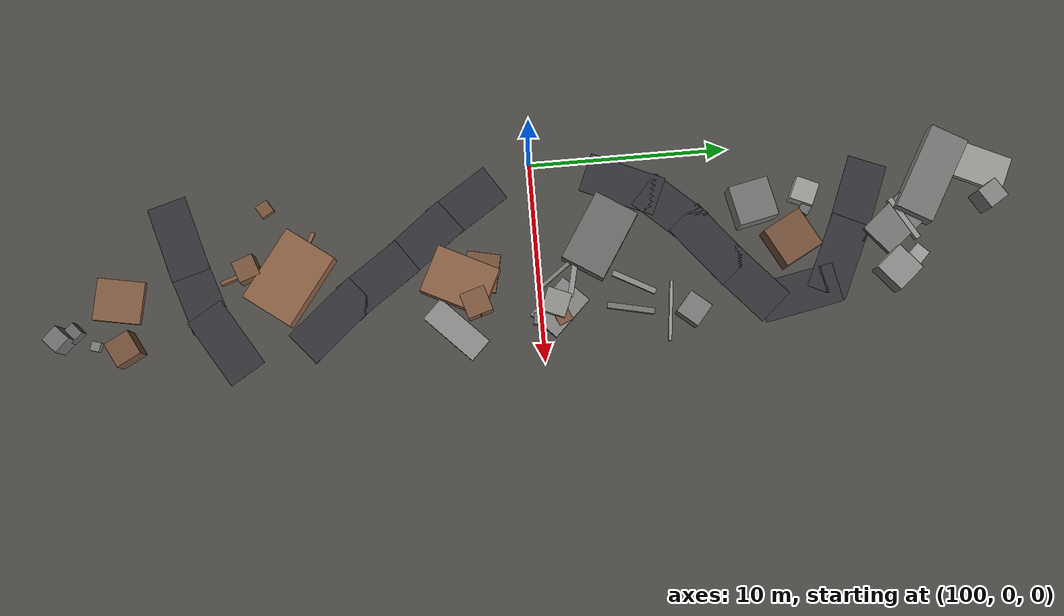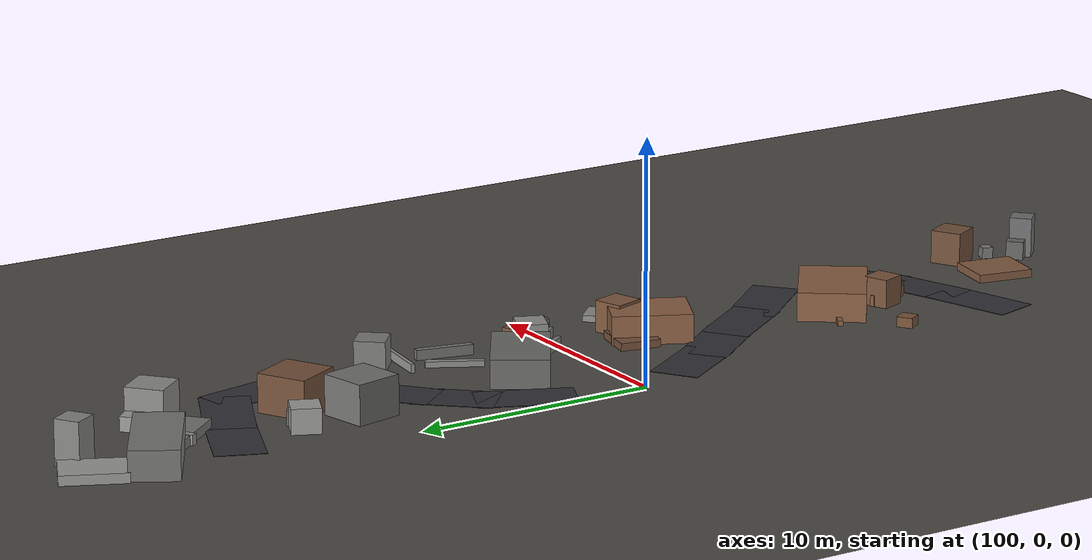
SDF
<sdf version="1.6">
 <world name="navitas_arena">
  <model name="ground_plane">
   <static>true</static>
   <link name="link">
    <collision name="collision">
     <geometry><plane><normal>0 0 1</normal><size>400 400</size></plane></geometry>
     <surface><friction><ode><mu>0.800</mu><mu2>0.800</mu2></ode></friction></surface>
    </collision>
    <visual name="visual">
     <cast_shadows>false</cast_shadows>
     <geometry><plane><normal>0 0 1</normal><size>400 400</size></plane></geometry>
     <material><ambient>0.300 0.290 0.270 1</ambient><diffuse>0.300 0.290 0.270 1</diffuse></material>
    </visual>
   </link>
  </model>
  <model name="road_zor_3_4">
   <static>true</static>
   <pose>102.347 -17.886 0.040 0 0 0.279</pose>
   <link name="link">
    <collision name="col"><geometry><box><size>3.922 2.000 0.020</size></box></geometry></collision>
    <visual name="vis">
     <geometry><box><size>3.922 2.000 0.020</size></box></geometry>
     <material><ambient>0.20 0.20 0.22 1</ambient><diffuse>0.20 0.20 0.22 1</diffuse></material>
    </visual>
   </link>
  </model>
  <model name="road_zor_3_5">
   <static>true</static>
   <pose>105.141 -17.017 0.040 0 0 0.325</pose>
   <link name="link">
    <collision name="col"><geometry><box><size>3.731 2.000 0.020</size></box></geometry></collision>
    <visual name="vis">
     <geometry><box><size>3.731 2.000 0.020</size></box></geometry>
     <material><ambient>0.20 0.20 0.22 1</ambient><diffuse>0.20 0.20 0.22 1</diffuse></material>
    </visual>
   </link>
  </model>
  <model name="road_zor_3_6">
   <static>true</static>
   <pose>107.753 -15.783 0.040 0 0 0.552</pose>
   <link name="link">
    <collision name="col"><geometry><box><size>3.884 2.000 0.020</size></box></geometry></collision>
    <visual name="vis">
     <geometry><box><size>3.884 2.000 0.020</size></box></geometry>
     <material><ambient>0.20 0.20 0.22 1</ambient><diffuse>0.20 0.20 0.22 1</diffuse></material>
    </visual>
   </link>
  </model>
  <model name="road_zor_3_8">
   <static>true</static>
   <pose>107.057 -10.426 0.040 0 0 2.277</pose>
   <link name="link">
    <collision name="col"><geometry><box><size>4.134 2.000 0.020</size></box></geometry></collision>
    <visual name="vis">
     <geometry><box><size>4.134 2.000 0.020</size></box></geometry>
     <material><ambient>0.20 0.20 0.22 1</ambient><diffuse>0.20 0.20 0.22 1</diffuse></material>
    </visual>
   </link>
  </model>
  <model name="road_zor_3_9">
   <static>true</static>
   <pose>105.177 -8.014 0.040 0 0 2.184</pose>
   <link name="link">
    <collision name="col"><geometry><box><size>3.788 2.000 0.020</size></box></geometry></collision>
    <visual name="vis">
     <geometry><box><size>3.788 2.000 0.020</size></box></geometry>
     <material><ambient>0.20 0.20 0.22 1</ambient><diffuse>0.20 0.20 0.22 1</diffuse></material>
    </visual>
   </link>
  </model>
  <model name="road_zor_3_10">
   <static>true</static>
   <pose>103.433 -5.667 0.040 0 0 2.235</pose>
   <link name="link">
    <collision name="col"><geometry><box><size>3.863 2.000 0.020</size></box></geometry></collision>
    <visual name="vis">
     <geometry><box><size>3.863 2.000 0.020</size></box></geometry>
     <material><ambient>0.20 0.20 0.22 1</ambient><diffuse>0.20 0.20 0.22 1</diffuse></material>
    </visual>
   </link>
  </model>
  <model name="road_zor_3_11">
   <static>true</static>
   <pose>101.753 -3.333 0.040 0 0 2.152</pose>
   <link name="link">
    <collision name="col"><geometry><box><size>3.692 2.000 0.020</size></box></geometry></collision>
    <visual name="vis">
     <geometry><box><size>3.692 2.000 0.020</size></box></geometry>
     <material><ambient>0.20 0.20 0.22 1</ambient><diffuse>0.20 0.20 0.22 1</diffuse></material>
    </visual>
   </link>
  </model>
  <model name="road_zor_3_14">
   <static>true</static>
   <pose>101.357 4.600 0.040 0 0 1.158</pose>
   <link name="link">
    <collision name="col"><geometry><box><size>3.957 2.000 0.020</size></box></geometry></collision>
    <visual name="vis">
     <geometry><box><size>3.957 2.000 0.020</size></box></geometry>
     <material><ambient>0.20 0.20 0.22 1</ambient><diffuse>0.20 0.20 0.22 1</diffuse></material>
    </visual>
   </link>
  </model>
  <model name="road_zor_3_15">
   <static>true</static>
   <pose>102.790 6.904 0.040 0 0 0.835</pose>
   <link name="link">
    <collision name="col"><geometry><box><size>3.340 2.000 0.020</size></box></geometry></collision>
    <visual name="vis">
     <geometry><box><size>3.340 2.000 0.020</size></box></geometry>
     <material><ambient>0.20 0.20 0.22 1</ambient><diffuse>0.20 0.20 0.22 1</diffuse></material>
    </visual>
   </link>
  </model>
  <model name="road_zor_3_16">
   <static>true</static>
   <pose>104.746 8.732 0.040 0 0 0.682</pose>
   <link name="link">
    <collision name="col"><geometry><box><size>3.831 2.000 0.020</size></box></geometry></collision>
    <visual name="vis">
     <geometry><box><size>3.831 2.000 0.020</size></box></geometry>
     <material><ambient>0.20 0.20 0.22 1</ambient><diffuse>0.20 0.20 0.22 1</diffuse></material>
    </visual>
   </link>
  </model>
  <model name="road_zor_3_17">
   <static>true</static>
   <pose>106.874 10.541 0.040 0 0 0.730</pose>
   <link name="link">
    <collision name="col"><geometry><box><size>3.555 2.000 0.020</size></box></geometry></collision>
    <visual name="vis">
     <geometry><box><size>3.555 2.000 0.020</size></box></geometry>
     <material><ambient>0.20 0.20 0.22 1</ambient><diffuse>0.20 0.20 0.22 1</diffuse></material>
    </visual>
   </link>
  </model>
  <model name="road_zor_3_18">
   <static>true</static>
   <pose>107.564 12.961 0.040 0 0 1.763</pose>
   <link name="link">
    <collision name="col"><geometry><box><size>4.029 2.000 0.020</size></box></geometry></collision>
    <visual name="vis">
     <geometry><box><size>4.029 2.000 0.020</size></box></geometry>
     <material><ambient>0.20 0.20 0.22 1</ambient><diffuse>0.20 0.20 0.22 1</diffuse></material>
    </visual>
   </link>
  </model>
  <model name="road_zor_3_19">
   <static>true</static>
   <pose>105.885 15.135 0.040 0 0 2.709</pose>
   <link name="link">
    <collision name="col"><geometry><box><size>3.941 2.000 0.020</size></box></geometry></collision>
    <visual name="vis">
     <geometry><box><size>3.941 2.000 0.020</size></box></geometry>
     <material><ambient>0.20 0.20 0.22 1</ambient><diffuse>0.20 0.20 0.22 1</diffuse></material>
    </visual>
   </link>
  </model>
  <model name="road_zor_3_20">
   <static>true</static>
   <pose>103.057 16.352 0.040 0 0 2.761</pose>
   <link name="link">
    <collision name="col"><geometry><box><size>4.018 2.000 0.020</size></box></geometry></collision>
    <visual name="vis">
     <geometry><box><size>4.018 2.000 0.020</size></box></geometry>
     <material><ambient>0.20 0.20 0.22 1</ambient><diffuse>0.20 0.20 0.22 1</diffuse></material>
    </visual>
   </link>
  </model>
  <model name="deb_zor_5">
   <static>true</static>
   <pose>107.823 1.070 0.320 0 0 0.381</pose>
   <link name="link">
    <collision name="col"><geometry><box><size>0.736 0.736 0.640</size></box></geometry></collision>
    <visual name="vis">
     <geometry><box><size>0.736 0.736 0.640</size></box></geometry>
     <material><ambient>0.49 0.34 0.24 1</ambient><diffuse>0.49 0.34 0.24 1</diffuse></material>
    </visual>
   </link>
  </model>
  <model name="deb_zor_76">
   <static>true</static>
   <pose>105.547 1.078 0.211 0 0 2.209</pose>
   <link name="link">
    <collision name="col"><geometry><box><size>2.885 0.183 0.423</size></box></geometry></collision>
    <visual name="vis">
     <geometry><box><size>2.885 0.183 0.423</size></box></geometry>
     <material><ambient>0.49 0.49 0.48 1</ambient><diffuse>0.49 0.49 0.48 1</diffuse></material>
    </visual>
   </link>
  </model>
  <model name="deb_zor_90">
   <static>true</static>
   <pose>105.256 -2.815 0.160 0 0 2.933</pose>
   <link name="link">
    <collision name="col"><geometry><box><size>1.926 1.692 0.319</size></box></geometry></collision>
    <visual name="vis">
     <geometry><box><size>1.926 1.692 0.319</size></box></geometry>
     <material><ambient>0.46 0.32 0.23 1</ambient><diffuse>0.46 0.32 0.23 1</diffuse></material>
    </visual>
   </link>
  </model>
  <model name="deb_zor_98">
   <static>true</static>
   <pose>107.683 4.474 0.211 0 0 1.360</pose>
   <link name="link">
    <collision name="col"><geometry><box><size>2.368 0.291 0.422</size></box></geometry></collision>
    <visual name="vis">
     <geometry><box><size>2.368 0.291 0.422</size></box></geometry>
     <material><ambient>0.45 0.45 0.44 1</ambient><diffuse>0.45 0.45 0.44 1</diffuse></material>
    </visual>
   </link>
  </model>
  <model name="deb_zor_104">
   <static>true</static>
   <pose>107.748 -20.600 0.704 0 0 0.482</pose>
   <link name="link">
    <collision name="col"><geometry><box><size>1.321 1.321 1.408</size></box></geometry></collision>
    <visual name="vis">
     <geometry><box><size>1.321 1.321 1.408</size></box></geometry>
     <material><ambient>0.45 0.32 0.23 1</ambient><diffuse>0.45 0.32 0.23 1</diffuse></material>
    </visual>
   </link>
  </model>
  <model name="deb_zor_105">
   <static>true</static>
   <pose>108.035 7.533 0.609 0 0 2.439</pose>
   <link name="link">
    <collision name="col"><geometry><box><size>1.265 1.265 1.219</size></box></geometry></collision>
    <visual name="vis">
     <geometry><box><size>1.265 1.265 1.219</size></box></geometry>
     <material><ambient>0.48 0.48 0.47 1</ambient><diffuse>0.48 0.48 0.47 1</diffuse></material>
    </visual>
   </link>
  </model>
  <model name="deb_zor_108">
   <static>true</static>
   <pose>105.252 -20.951 0.170 0 0 1.390</pose>
   <link name="link">
    <collision name="col"><geometry><box><size>2.407 2.114 0.340</size></box></geometry></collision>
    <visual name="vis">
     <geometry><box><size>2.407 2.114 0.340</size></box></geometry>
     <material><ambient>0.51 0.36 0.26 1</ambient><diffuse>0.51 0.36 0.26 1</diffuse></material>
    </visual>
   </link>
  </model>
  <model name="deb_zor_123">
   <static>true</static>
   <pose>103.577 -11.655 0.109 0 0 2.624</pose>
   <link name="link">
    <collision name="col"><geometry><box><size>2.303 0.211 0.219</size></box></geometry></collision>
    <visual name="vis">
     <geometry><box><size>2.303 0.211 0.219</size></box></geometry>
     <material><ambient>0.53 0.37 0.26 1</ambient><diffuse>0.53 0.37 0.26 1</diffuse></material>
    </visual>
   </link>
  </model>
  <model name="deb_zor_136">
   <static>true</static>
   <pose>107.433 -22.159 0.236 0 0 2.847</pose>
   <link name="link">
    <collision name="col"><geometry><box><size>0.469 0.469 0.473</size></box></geometry></collision>
    <visual name="vis">
     <geometry><box><size>0.469 0.469 0.473</size></box></geometry>
     <material><ambient>0.48 0.48 0.47 1</ambient><diffuse>0.48 0.48 0.47 1</diffuse></material>
    </visual>
   </link>
  </model>
  <model name="deb_zor_142">
   <static>true</static>
   <pose>107.358 0.941 0.209 0 0 2.344</pose>
   <link name="link">
    <collision name="col"><geometry><box><size>2.503 1.731 0.417</size></box></geometry></collision>
    <visual name="vis">
     <geometry><box><size>2.503 1.731 0.417</size></box></geometry>
     <material><ambient>0.51 0.51 0.50 1</ambient><diffuse>0.51 0.51 0.50 1</diffuse></material>
    </visual>
   </link>
  </model>
  <model name="deb_zor_156">
   <static>true</static>
   <pose>104.295 18.533 0.208 0 0 0.525</pose>
   <link name="link">
    <collision name="col"><geometry><box><size>2.417 0.278 0.416</size></box></geometry></collision>
    <visual name="vis">
     <geometry><box><size>2.417 0.278 0.416</size></box></geometry>
     <material><ambient>0.58 0.58 0.57 1</ambient><diffuse>0.58 0.58 0.57 1</diffuse></material>
    </visual>
   </link>
  </model>
  <model name="deb_zor_170">
   <static>true</static>
   <pose>102.596 13.589 0.508 0 0 2.724</pose>
   <link name="link">
    <collision name="col"><geometry><box><size>1.169 1.169 1.017</size></box></geometry></collision>
    <visual name="vis">
     <geometry><box><size>1.169 1.169 1.017</size></box></geometry>
     <material><ambient>0.61 0.61 0.59 1</ambient><diffuse>0.61 0.61 0.59 1</diffuse></material>
    </visual>
   </link>
  </model>
  <model name="deb_zor_184">
   <static>true</static>
   <pose>106.150 19.031 0.298 0 0 0.790</pose>
   <link name="link">
    <collision name="col"><geometry><box><size>0.756 0.756 0.595</size></box></geometry></collision>
    <visual name="vis">
     <geometry><box><size>0.756 0.756 0.595</size></box></geometry>
     <material><ambient>0.61 0.61 0.60 1</ambient><diffuse>0.61 0.61 0.60 1</diffuse></material>
    </visual>
   </link>
  </model>
  <model name="deb_zor_195">
   <static>true</static>
   <pose>103.605 22.693 0.931 0 0 0.567</pose>
   <link name="link">
    <collision name="col"><geometry><box><size>1.060 1.060 1.863</size></box></geometry></collision>
    <visual name="vis">
     <geometry><box><size>1.060 1.060 1.863</size></box></geometry>
     <material><ambient>0.52 0.52 0.51 1</ambient><diffuse>0.52 0.52 0.51 1</diffuse></material>
    </visual>
   </link>
  </model>
  <model name="deb_zor_208">
   <static>true</static>
   <pose>107.885 -0.136 0.388 0 0 1.425</pose>
   <link name="link">
    <collision name="col"><geometry><box><size>0.538 0.538 0.776</size></box></geometry></collision>
    <visual name="vis">
     <geometry><box><size>0.538 0.538 0.776</size></box></geometry>
     <material><ambient>0.42 0.42 0.41 1</ambient><diffuse>0.42 0.42 0.41 1</diffuse></material>
    </visual>
   </link>
  </model>
  <model name="deb_zor_214">
   <static>true</static>
   <pose>101.217 -13.433 0.211 0 0 0.554</pose>
   <link name="link">
    <collision name="col"><geometry><box><size>0.676 0.676 0.422</size></box></geometry></collision>
    <visual name="vis">
     <geometry><box><size>0.676 0.676 0.422</size></box></geometry>
     <material><ambient>0.47 0.33 0.23 1</ambient><diffuse>0.47 0.33 0.23 1</diffuse></material>
    </visual>
   </link>
  </model>
  <model name="deb_zor_216">
   <static>true</static>
   <pose>104.486 -14.811 0.230 0 0 1.891</pose>
   <link name="link">
    <collision name="col"><geometry><box><size>2.096 0.190 0.461</size></box></geometry></collision>
    <visual name="vis">
     <geometry><box><size>2.096 0.190 0.461</size></box></geometry>
     <material><ambient>0.50 0.35 0.25 1</ambient><diffuse>0.50 0.35 0.25 1</diffuse></material>
    </visual>
   </link>
  </model>
  <model name="deb_zor_220">
   <static>true</static>
   <pose>107.040 -23.764 0.837 0 0 0.761</pose>
   <link name="link">
    <collision name="col"><geometry><box><size>0.933 0.933 1.675</size></box></geometry></collision>
    <visual name="vis">
     <geometry><box><size>0.933 0.933 1.675</size></box></geometry>
     <material><ambient>0.44 0.44 0.44 1</ambient><diffuse>0.44 0.44 0.44 1</diffuse></material>
    </visual>
   </link>
  </model>
  <model name="deb_zor_231">
   <static>true</static>
   <pose>107.967 6.433 0.186 0 0 3.023</pose>
   <link name="link">
    <collision name="col"><geometry><box><size>2.999 0.157 0.371</size></box></geometry></collision>
    <visual name="vis">
     <geometry><box><size>2.999 0.157 0.371</size></box></geometry>
     <material><ambient>0.59 0.59 0.58 1</ambient><diffuse>0.59 0.59 0.58 1</diffuse></material>
    </visual>
   </link>
  </model>
  <model name="deb_zor_234">
   <static>true</static>
   <pose>107.149 0.784 0.511 0 0 2.754</pose>
   <link name="link">
    <collision name="col"><geometry><box><size>1.232 1.232 1.022</size></box></geometry></collision>
    <visual name="vis">
     <geometry><box><size>1.232 1.232 1.022</size></box></geometry>
     <material><ambient>0.56 0.56 0.55 1</ambient><diffuse>0.56 0.56 0.55 1</diffuse></material>
    </visual>
   </link>
  </model>
  <model name="deb_zor_253">
   <static>true</static>
   <pose>106.384 4.761 0.121 0 0 1.075</pose>
   <link name="link">
    <collision name="col"><geometry><box><size>2.343 0.286 0.242</size></box></geometry></collision>
    <visual name="vis">
     <geometry><box><size>2.343 0.286 0.242</size></box></geometry>
     <material><ambient>0.54 0.54 0.53 1</ambient><diffuse>0.54 0.54 0.53 1</diffuse></material>
    </visual>
   </link>
  </model>
  <model name="deb_zor_264">
   <static>true</static>
   <pose>106.863 -3.165 0.662 0 0 1.867</pose>
   <link name="link">
    <collision name="col"><geometry><box><size>1.280 1.280 1.324</size></box></geometry></collision>
    <visual name="vis">
     <geometry><box><size>1.280 1.280 1.324</size></box></geometry>
     <material><ambient>0.50 0.35 0.25 1</ambient><diffuse>0.50 0.35 0.25 1</diffuse></material>
    </visual>
   </link>
  </model>
  <model name="deb_zor_266">
   <static>true</static>
   <pose>108.048 -4.272 0.133 0 0 0.780</pose>
   <link name="link">
    <collision name="col"><geometry><box><size>3.228 1.315 0.266</size></box></geometry></collision>
    <visual name="vis">
     <geometry><box><size>3.228 1.315 0.266</size></box></geometry>
     <material><ambient>0.55 0.55 0.54 1</ambient><diffuse>0.55 0.55 0.54 1</diffuse></material>
    </visual>
   </link>
  </model>
  <model name="deb_zor_269">
   <static>true</static>
   <pose>103.415 13.592 0.308 0 0 0.948</pose>
   <link name="link">
    <collision name="col"><geometry><box><size>0.535 0.535 0.617</size></box></geometry></collision>
    <visual name="vis">
     <geometry><box><size>0.535 0.535 0.617</size></box></geometry>
     <material><ambient>0.42 0.42 0.41 1</ambient><diffuse>0.42 0.42 0.41 1</diffuse></material>
    </visual>
   </link>
  </model>
  <model name="deb_zor_275">
   <static>true</static>
   <pose>106.704 -23.203 0.391 0 0 0.739</pose>
   <link name="link">
    <collision name="col"><geometry><box><size>0.728 0.728 0.782</size></box></geometry></collision>
    <visual name="vis">
     <geometry><box><size>0.728 0.728 0.782</size></box></geometry>
     <material><ambient>0.40 0.40 0.39 1</ambient><diffuse>0.40 0.40 0.39 1</diffuse></material>
    </visual>
   </link>
  </model>
  <model name="deb_zor_293">
   <static>true</static>
   <pose>104.300 18.301 0.196 0 0 2.272</pose>
   <link name="link">
    <collision name="col"><geometry><box><size>3.248 1.842 0.392</size></box></geometry></collision>
    <visual name="vis">
     <geometry><box><size>3.248 1.842 0.392</size></box></geometry>
     <material><ambient>0.46 0.46 0.45 1</ambient><diffuse>0.46 0.46 0.45 1</diffuse></material>
    </visual>
   </link>
  </model>
  <model name="deb_zor_294">
   <static>true</static>
   <pose>106.854 17.823 0.721 0 0 2.273</pose>
   <link name="link">
    <collision name="col"><geometry><box><size>1.594 1.594 1.442</size></box></geometry></collision>
    <visual name="vis">
     <geometry><box><size>1.594 1.594 1.442</size></box></geometry>
     <material><ambient>0.55 0.55 0.54 1</ambient><diffuse>0.55 0.55 0.54 1</diffuse></material>
    </visual>
   </link>
  </model>
  <model name="deb_zor_302">
   <static>true</static>
   <pose>102.003 22.741 0.199 0 0 1.137</pose>
   <link name="link">
    <collision name="col"><geometry><box><size>2.615 1.828 0.398</size></box></geometry></collision>
    <visual name="vis">
     <geometry><box><size>2.615 1.828 0.398</size></box></geometry>
     <material><ambient>0.60 0.60 0.58 1</ambient><diffuse>0.60 0.60 0.58 1</diffuse></material>
    </visual>
   </link>
  </model>
  <model name="deb_zor_315">
   <static>true</static>
   <pose>106.017 1.699 0.237 0 0 2.918</pose>
   <link name="link">
    <collision name="col"><geometry><box><size>1.812 0.276 0.474</size></box></geometry></collision>
    <visual name="vis">
     <geometry><box><size>1.812 0.276 0.474</size></box></geometry>
     <material><ambient>0.57 0.57 0.56 1</ambient><diffuse>0.57 0.57 0.56 1</diffuse></material>
    </visual>
   </link>
  </model>
  <model name="chic_zor_2">
   <static>true</static>
   <pose>104.253 -14.404 0.600 0 0 0.348</pose>
   <link name="link">
    <collision name="col"><geometry><box><size>1.091 1.091 1.200</size></box></geometry></collision>
    <visual name="vis">
     <geometry><box><size>1.091 1.091 1.200</size></box></geometry>
     <material><ambient>0.48 0.34 0.24 1</ambient><diffuse>0.48 0.34 0.24 1</diffuse></material>
    </visual>
   </link>
  </model>
  <model name="chic_zor_4">
   <static>true</static>
   <pose>104.864 -12.322 0.600 0 0 2.506</pose>
   <link name="link">
    <collision name="col"><geometry><box><size>4.003 2.800 1.200</size></box></geometry></collision>
    <visual name="vis">
     <geometry><box><size>4.003 2.800 1.200</size></box></geometry>
     <material><ambient>0.55 0.38 0.27 1</ambient><diffuse>0.55 0.38 0.27 1</diffuse></material>
    </visual>
   </link>
  </model>
  <model name="chic_zor_5">
   <static>true</static>
   <pose>105.684 -3.893 0.600 0 0 1.113</pose>
   <link name="link">
    <collision name="col"><geometry><box><size>3.276 2.444 1.200</size></box></geometry></collision>
    <visual name="vis">
     <geometry><box><size>3.276 2.444 1.200</size></box></geometry>
     <material><ambient>0.55 0.38 0.27 1</ambient><diffuse>0.55 0.38 0.27 1</diffuse></material>
    </visual>
   </link>
  </model>
  <model name="chic_zor_7">
   <static>true</static>
   <pose>104.019 3.196 0.600 0 0 2.574</pose>
   <link name="link">
    <collision name="col"><geometry><box><size>3.707 2.332 1.200</size></box></geometry></collision>
    <visual name="vis">
     <geometry><box><size>3.707 2.332 1.200</size></box></geometry>
     <material><ambient>0.42 0.42 0.41 1</ambient><diffuse>0.42 0.42 0.41 1</diffuse></material>
    </visual>
   </link>
  </model>
  <model name="chic_zor_8">
   <static>true</static>
   <pose>103.001 10.903 0.817 0 0 0.212</pose>
   <link name="link">
    <collision name="col"><geometry><box><size>1.994 1.994 1.634</size></box></geometry></collision>
    <visual name="vis">
     <geometry><box><size>1.994 1.994 1.634</size></box></geometry>
     <material><ambient>0.45 0.45 0.44 1</ambient><diffuse>0.45 0.45 0.44 1</diffuse></material>
    </visual>
   </link>
  </model>
  <model name="chic_zor_10">
   <static>true</static>
   <pose>104.947 12.677 0.788 0 0 2.065</pose>
   <link name="link">
    <collision name="col"><geometry><box><size>2.090 2.090 1.576</size></box></geometry></collision>
    <visual name="vis">
     <geometry><box><size>2.090 2.090 1.576</size></box></geometry>
     <material><ambient>0.46 0.32 0.23 1</ambient><diffuse>0.46 0.32 0.23 1</diffuse></material>
    </visual>
   </link>
  </model>
  <model name="chic_zor_11">
   <static>true</static>
   <pose>102.255 20.009 0.600 0 0 2.620</pose>
   <link name="link">
    <collision name="col"><geometry><box><size>4.519 1.944 1.200</size></box></geometry></collision>
    <visual name="vis">
     <geometry><box><size>4.519 1.944 1.200</size></box></geometry>
     <material><ambient>0.46 0.46 0.45 1</ambient><diffuse>0.46 0.46 0.45 1</diffuse></material>
    </visual>
   </link>
  </model>
 </world>
</sdf>
